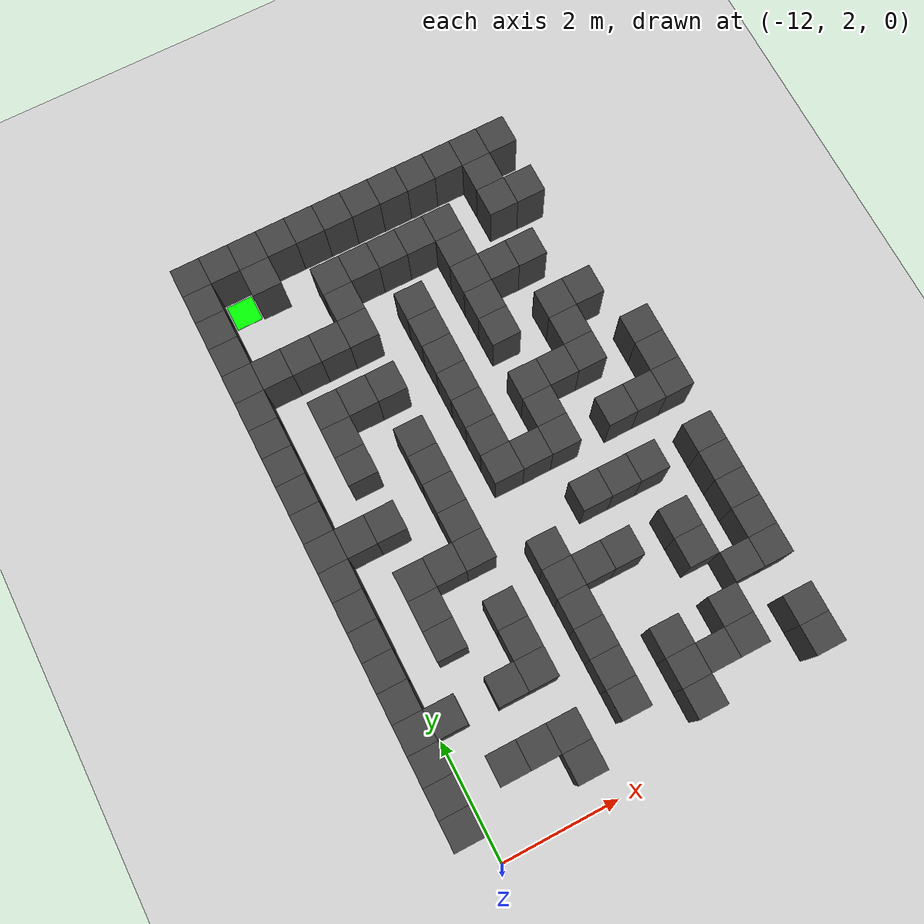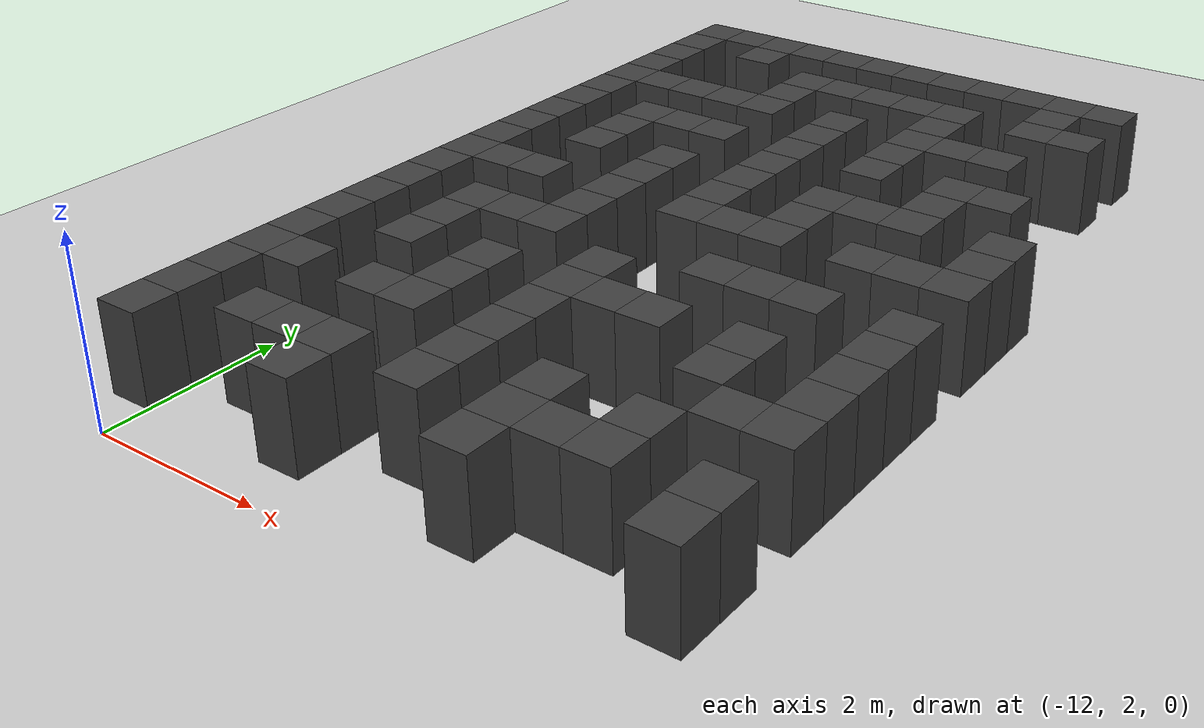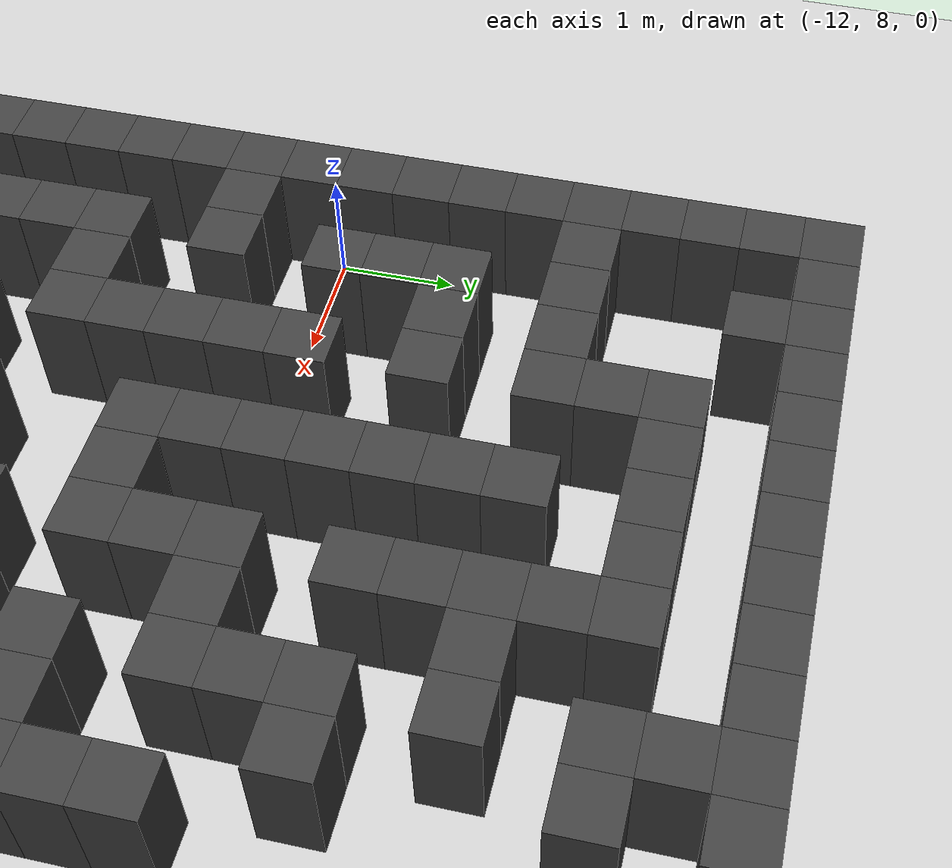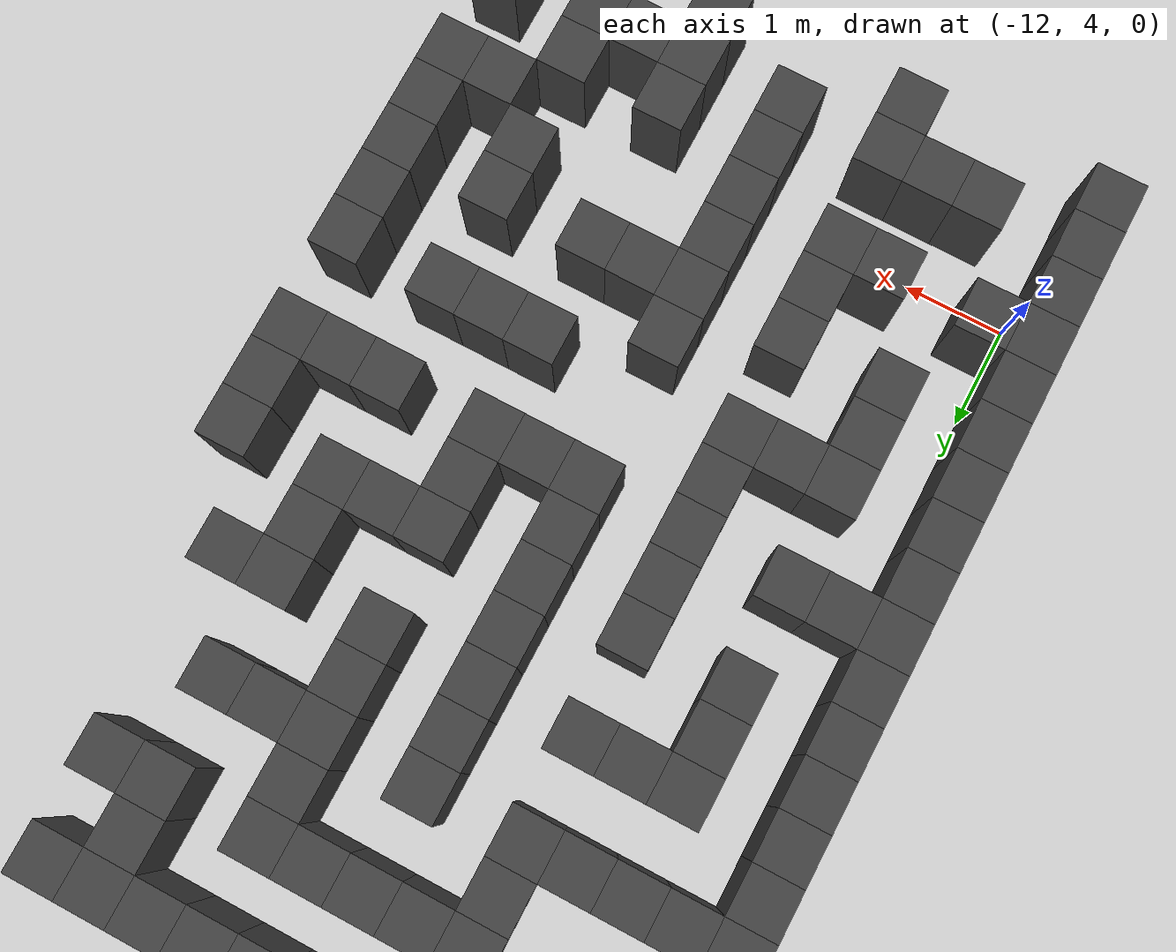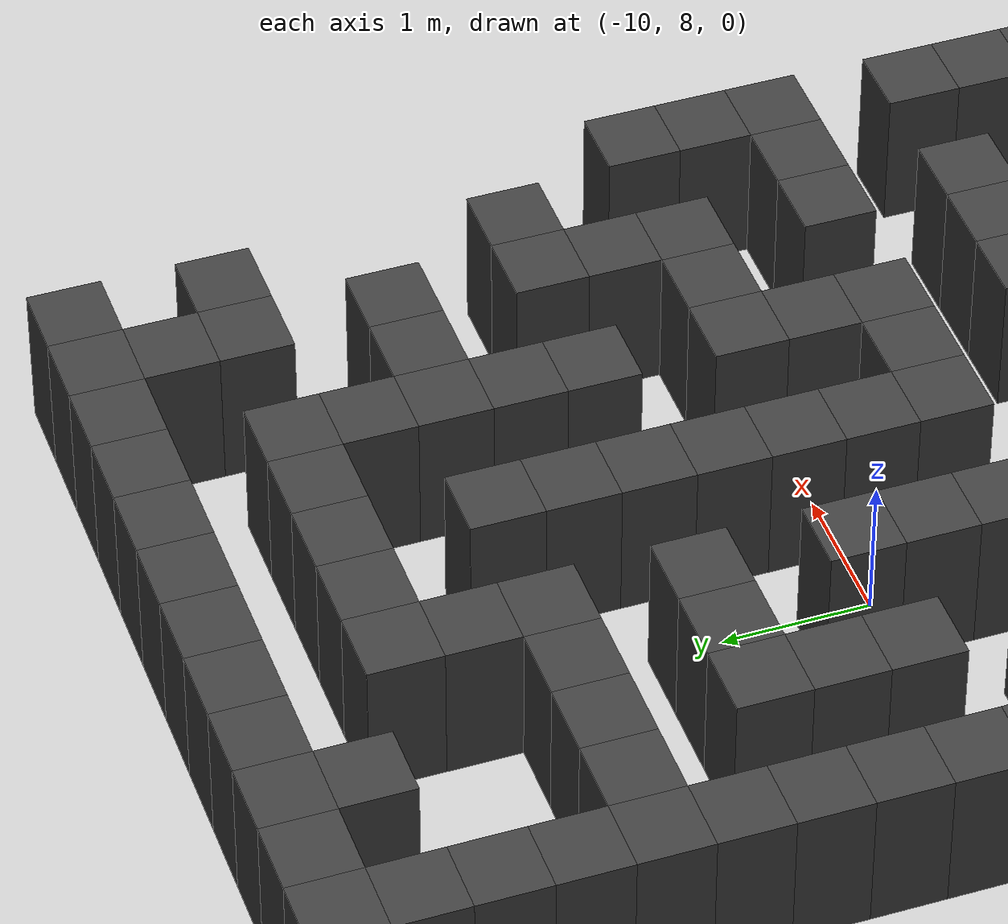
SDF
<sdf version="1.7">
 <world name="map_16668">
  <model name="ground_plane">
   <static>true</static>
   <link name="link">
    <collision name="collision">
     <geometry><plane><normal>0 0 1</normal><size>200 200</size></plane></geometry>
    </collision>
    <visual name="visual">
     <geometry><plane><normal>0 0 1</normal><size>200 200</size></plane></geometry>
     <material><ambient>0.8 0.8 0.8 1</ambient><diffuse>0.8 0.8 0.8 1</diffuse></material>
    </visual>
   </link>
  </model>
  <model name="maze_environment">
   <static>true</static>
   <link name="wall_0">
    <pose>-12.250 12.250 0.500 0 0 0</pose>
    <collision name="col"><geometry><box><size>0.5 0.5 1.0</size></box></geometry></collision>
    <visual name="vis">
     <geometry><box><size>0.5 0.5 1.0</size></box></geometry>
     <material><ambient>0.15 0.15 0.15 1</ambient><diffuse>0.25 0.25 0.25 1</diffuse></material>
    </visual>
   </link>
   <link name="wall_1">
    <pose>-11.750 12.250 0.500 0 0 0</pose>
    <collision name="col"><geometry><box><size>0.5 0.5 1.0</size></box></geometry></collision>
    <visual name="vis">
     <geometry><box><size>0.5 0.5 1.0</size></box></geometry>
     <material><ambient>0.15 0.15 0.15 1</ambient><diffuse>0.25 0.25 0.25 1</diffuse></material>
    </visual>
   </link>
   <link name="wall_2">
    <pose>-11.250 12.250 0.500 0 0 0</pose>
    <collision name="col"><geometry><box><size>0.5 0.5 1.0</size></box></geometry></collision>
    <visual name="vis">
     <geometry><box><size>0.5 0.5 1.0</size></box></geometry>
     <material><ambient>0.15 0.15 0.15 1</ambient><diffuse>0.25 0.25 0.25 1</diffuse></material>
    </visual>
   </link>
   <link name="wall_3">
    <pose>-10.750 12.250 0.500 0 0 0</pose>
    <collision name="col"><geometry><box><size>0.5 0.5 1.0</size></box></geometry></collision>
    <visual name="vis">
     <geometry><box><size>0.5 0.5 1.0</size></box></geometry>
     <material><ambient>0.15 0.15 0.15 1</ambient><diffuse>0.25 0.25 0.25 1</diffuse></material>
    </visual>
   </link>
   <link name="wall_4">
    <pose>-10.250 12.250 0.500 0 0 0</pose>
    <collision name="col"><geometry><box><size>0.5 0.5 1.0</size></box></geometry></collision>
    <visual name="vis">
     <geometry><box><size>0.5 0.5 1.0</size></box></geometry>
     <material><ambient>0.15 0.15 0.15 1</ambient><diffuse>0.25 0.25 0.25 1</diffuse></material>
    </visual>
   </link>
   <link name="wall_5">
    <pose>-9.750 12.250 0.500 0 0 0</pose>
    <collision name="col"><geometry><box><size>0.5 0.5 1.0</size></box></geometry></collision>
    <visual name="vis">
     <geometry><box><size>0.5 0.5 1.0</size></box></geometry>
     <material><ambient>0.15 0.15 0.15 1</ambient><diffuse>0.25 0.25 0.25 1</diffuse></material>
    </visual>
   </link>
   <link name="wall_6">
    <pose>-9.250 12.250 0.500 0 0 0</pose>
    <collision name="col"><geometry><box><size>0.5 0.5 1.0</size></box></geometry></collision>
    <visual name="vis">
     <geometry><box><size>0.5 0.5 1.0</size></box></geometry>
     <material><ambient>0.15 0.15 0.15 1</ambient><diffuse>0.25 0.25 0.25 1</diffuse></material>
    </visual>
   </link>
   <link name="wall_7">
    <pose>-8.750 12.250 0.500 0 0 0</pose>
    <collision name="col"><geometry><box><size>0.5 0.5 1.0</size></box></geometry></collision>
    <visual name="vis">
     <geometry><box><size>0.5 0.5 1.0</size></box></geometry>
     <material><ambient>0.15 0.15 0.15 1</ambient><diffuse>0.25 0.25 0.25 1</diffuse></material>
    </visual>
   </link>
   <link name="wall_8">
    <pose>-8.250 12.250 0.500 0 0 0</pose>
    <collision name="col"><geometry><box><size>0.5 0.5 1.0</size></box></geometry></collision>
    <visual name="vis">
     <geometry><box><size>0.5 0.5 1.0</size></box></geometry>
     <material><ambient>0.15 0.15 0.15 1</ambient><diffuse>0.25 0.25 0.25 1</diffuse></material>
    </visual>
   </link>
   <link name="wall_9">
    <pose>-7.750 12.250 0.500 0 0 0</pose>
    <collision name="col"><geometry><box><size>0.5 0.5 1.0</size></box></geometry></collision>
    <visual name="vis">
     <geometry><box><size>0.5 0.5 1.0</size></box></geometry>
     <material><ambient>0.15 0.15 0.15 1</ambient><diffuse>0.25 0.25 0.25 1</diffuse></material>
    </visual>
   </link>
   <link name="wall_10">
    <pose>-7.250 12.250 0.500 0 0 0</pose>
    <collision name="col"><geometry><box><size>0.5 0.5 1.0</size></box></geometry></collision>
    <visual name="vis">
     <geometry><box><size>0.5 0.5 1.0</size></box></geometry>
     <material><ambient>0.15 0.15 0.15 1</ambient><diffuse>0.25 0.25 0.25 1</diffuse></material>
    </visual>
   </link>
   <link name="wall_11">
    <pose>-6.750 12.250 0.500 0 0 0</pose>
    <collision name="col"><geometry><box><size>0.5 0.5 1.0</size></box></geometry></collision>
    <visual name="vis">
     <geometry><box><size>0.5 0.5 1.0</size></box></geometry>
     <material><ambient>0.15 0.15 0.15 1</ambient><diffuse>0.25 0.25 0.25 1</diffuse></material>
    </visual>
   </link>
   <link name="wall_50">
    <pose>-12.250 11.750 0.500 0 0 0</pose>
    <collision name="col"><geometry><box><size>0.5 0.5 1.0</size></box></geometry></collision>
    <visual name="vis">
     <geometry><box><size>0.5 0.5 1.0</size></box></geometry>
     <material><ambient>0.15 0.15 0.15 1</ambient><diffuse>0.25 0.25 0.25 1</diffuse></material>
    </visual>
   </link>
   <link name="wall_51">
    <pose>-11.250 11.750 0.500 0 0 0</pose>
    <collision name="col"><geometry><box><size>0.5 0.5 1.0</size></box></geometry></collision>
    <visual name="vis">
     <geometry><box><size>0.5 0.5 1.0</size></box></geometry>
     <material><ambient>0.15 0.15 0.15 1</ambient><diffuse>0.25 0.25 0.25 1</diffuse></material>
    </visual>
   </link>
   <link name="wall_52">
    <pose>-7.250 11.750 0.500 0 0 0</pose>
    <collision name="col"><geometry><box><size>0.5 0.5 1.0</size></box></geometry></collision>
    <visual name="vis">
     <geometry><box><size>0.5 0.5 1.0</size></box></geometry>
     <material><ambient>0.15 0.15 0.15 1</ambient><diffuse>0.25 0.25 0.25 1</diffuse></material>
    </visual>
   </link>
   <link name="wall_57">
    <pose>-12.250 11.250 0.500 0 0 0</pose>
    <collision name="col"><geometry><box><size>0.5 0.5 1.0</size></box></geometry></collision>
    <visual name="vis">
     <geometry><box><size>0.5 0.5 1.0</size></box></geometry>
     <material><ambient>0.15 0.15 0.15 1</ambient><diffuse>0.25 0.25 0.25 1</diffuse></material>
    </visual>
   </link>
   <link name="wall_58">
    <pose>-10.250 11.250 0.500 0 0 0</pose>
    <collision name="col"><geometry><box><size>0.5 0.5 1.0</size></box></geometry></collision>
    <visual name="vis">
     <geometry><box><size>0.5 0.5 1.0</size></box></geometry>
     <material><ambient>0.15 0.15 0.15 1</ambient><diffuse>0.25 0.25 0.25 1</diffuse></material>
    </visual>
   </link>
   <link name="wall_59">
    <pose>-9.750 11.250 0.500 0 0 0</pose>
    <collision name="col"><geometry><box><size>0.5 0.5 1.0</size></box></geometry></collision>
    <visual name="vis">
     <geometry><box><size>0.5 0.5 1.0</size></box></geometry>
     <material><ambient>0.15 0.15 0.15 1</ambient><diffuse>0.25 0.25 0.25 1</diffuse></material>
    </visual>
   </link>
   <link name="wall_60">
    <pose>-9.250 11.250 0.500 0 0 0</pose>
    <collision name="col"><geometry><box><size>0.5 0.5 1.0</size></box></geometry></collision>
    <visual name="vis">
     <geometry><box><size>0.5 0.5 1.0</size></box></geometry>
     <material><ambient>0.15 0.15 0.15 1</ambient><diffuse>0.25 0.25 0.25 1</diffuse></material>
    </visual>
   </link>
   <link name="wall_61">
    <pose>-8.750 11.250 0.500 0 0 0</pose>
    <collision name="col"><geometry><box><size>0.5 0.5 1.0</size></box></geometry></collision>
    <visual name="vis">
     <geometry><box><size>0.5 0.5 1.0</size></box></geometry>
     <material><ambient>0.15 0.15 0.15 1</ambient><diffuse>0.25 0.25 0.25 1</diffuse></material>
    </visual>
   </link>
   <link name="wall_62">
    <pose>-8.250 11.250 0.500 0 0 0</pose>
    <collision name="col"><geometry><box><size>0.5 0.5 1.0</size></box></geometry></collision>
    <visual name="vis">
     <geometry><box><size>0.5 0.5 1.0</size></box></geometry>
     <material><ambient>0.15 0.15 0.15 1</ambient><diffuse>0.25 0.25 0.25 1</diffuse></material>
    </visual>
   </link>
   <link name="wall_63">
    <pose>-7.250 11.250 0.500 0 0 0</pose>
    <collision name="col"><geometry><box><size>0.5 0.5 1.0</size></box></geometry></collision>
    <visual name="vis">
     <geometry><box><size>0.5 0.5 1.0</size></box></geometry>
     <material><ambient>0.15 0.15 0.15 1</ambient><diffuse>0.25 0.25 0.25 1</diffuse></material>
    </visual>
   </link>
   <link name="wall_64">
    <pose>-6.750 11.250 0.500 0 0 0</pose>
    <collision name="col"><geometry><box><size>0.5 0.5 1.0</size></box></geometry></collision>
    <visual name="vis">
     <geometry><box><size>0.5 0.5 1.0</size></box></geometry>
     <material><ambient>0.15 0.15 0.15 1</ambient><diffuse>0.25 0.25 0.25 1</diffuse></material>
    </visual>
   </link>
   <link name="wall_94">
    <pose>-12.250 10.750 0.500 0 0 0</pose>
    <collision name="col"><geometry><box><size>0.5 0.5 1.0</size></box></geometry></collision>
    <visual name="vis">
     <geometry><box><size>0.5 0.5 1.0</size></box></geometry>
     <material><ambient>0.15 0.15 0.15 1</ambient><diffuse>0.25 0.25 0.25 1</diffuse></material>
    </visual>
   </link>
   <link name="wall_95">
    <pose>-10.250 10.750 0.500 0 0 0</pose>
    <collision name="col"><geometry><box><size>0.5 0.5 1.0</size></box></geometry></collision>
    <visual name="vis">
     <geometry><box><size>0.5 0.5 1.0</size></box></geometry>
     <material><ambient>0.15 0.15 0.15 1</ambient><diffuse>0.25 0.25 0.25 1</diffuse></material>
    </visual>
   </link>
   <link name="wall_96">
    <pose>-8.250 10.750 0.500 0 0 0</pose>
    <collision name="col"><geometry><box><size>0.5 0.5 1.0</size></box></geometry></collision>
    <visual name="vis">
     <geometry><box><size>0.5 0.5 1.0</size></box></geometry>
     <material><ambient>0.15 0.15 0.15 1</ambient><diffuse>0.25 0.25 0.25 1</diffuse></material>
    </visual>
   </link>
   <link name="wall_109">
    <pose>-12.250 10.250 0.500 0 0 0</pose>
    <collision name="col"><geometry><box><size>0.5 0.5 1.0</size></box></geometry></collision>
    <visual name="vis">
     <geometry><box><size>0.5 0.5 1.0</size></box></geometry>
     <material><ambient>0.15 0.15 0.15 1</ambient><diffuse>0.25 0.25 0.25 1</diffuse></material>
    </visual>
   </link>
   <link name="wall_110">
    <pose>-11.750 10.250 0.500 0 0 0</pose>
    <collision name="col"><geometry><box><size>0.5 0.5 1.0</size></box></geometry></collision>
    <visual name="vis">
     <geometry><box><size>0.5 0.5 1.0</size></box></geometry>
     <material><ambient>0.15 0.15 0.15 1</ambient><diffuse>0.25 0.25 0.25 1</diffuse></material>
    </visual>
   </link>
   <link name="wall_111">
    <pose>-11.250 10.250 0.500 0 0 0</pose>
    <collision name="col"><geometry><box><size>0.5 0.5 1.0</size></box></geometry></collision>
    <visual name="vis">
     <geometry><box><size>0.5 0.5 1.0</size></box></geometry>
     <material><ambient>0.15 0.15 0.15 1</ambient><diffuse>0.25 0.25 0.25 1</diffuse></material>
    </visual>
   </link>
   <link name="wall_112">
    <pose>-10.750 10.250 0.500 0 0 0</pose>
    <collision name="col"><geometry><box><size>0.5 0.5 1.0</size></box></geometry></collision>
    <visual name="vis">
     <geometry><box><size>0.5 0.5 1.0</size></box></geometry>
     <material><ambient>0.15 0.15 0.15 1</ambient><diffuse>0.25 0.25 0.25 1</diffuse></material>
    </visual>
   </link>
   <link name="wall_113">
    <pose>-10.250 10.250 0.500 0 0 0</pose>
    <collision name="col"><geometry><box><size>0.5 0.5 1.0</size></box></geometry></collision>
    <visual name="vis">
     <geometry><box><size>0.5 0.5 1.0</size></box></geometry>
     <material><ambient>0.15 0.15 0.15 1</ambient><diffuse>0.25 0.25 0.25 1</diffuse></material>
    </visual>
   </link>
   <link name="wall_114">
    <pose>-9.250 10.250 0.500 0 0 0</pose>
    <collision name="col"><geometry><box><size>0.5 0.5 1.0</size></box></geometry></collision>
    <visual name="vis">
     <geometry><box><size>0.5 0.5 1.0</size></box></geometry>
     <material><ambient>0.15 0.15 0.15 1</ambient><diffuse>0.25 0.25 0.25 1</diffuse></material>
    </visual>
   </link>
   <link name="wall_115">
    <pose>-8.250 10.250 0.500 0 0 0</pose>
    <collision name="col"><geometry><box><size>0.5 0.5 1.0</size></box></geometry></collision>
    <visual name="vis">
     <geometry><box><size>0.5 0.5 1.0</size></box></geometry>
     <material><ambient>0.15 0.15 0.15 1</ambient><diffuse>0.25 0.25 0.25 1</diffuse></material>
    </visual>
   </link>
   <link name="wall_116">
    <pose>-7.750 10.250 0.500 0 0 0</pose>
    <collision name="col"><geometry><box><size>0.5 0.5 1.0</size></box></geometry></collision>
    <visual name="vis">
     <geometry><box><size>0.5 0.5 1.0</size></box></geometry>
     <material><ambient>0.15 0.15 0.15 1</ambient><diffuse>0.25 0.25 0.25 1</diffuse></material>
    </visual>
   </link>
   <link name="wall_117">
    <pose>-7.250 10.250 0.500 0 0 0</pose>
    <collision name="col"><geometry><box><size>0.5 0.5 1.0</size></box></geometry></collision>
    <visual name="vis">
     <geometry><box><size>0.5 0.5 1.0</size></box></geometry>
     <material><ambient>0.15 0.15 0.15 1</ambient><diffuse>0.25 0.25 0.25 1</diffuse></material>
    </visual>
   </link>
   <link name="wall_142">
    <pose>-12.250 9.750 0.500 0 0 0</pose>
    <collision name="col"><geometry><box><size>0.5 0.5 1.0</size></box></geometry></collision>
    <visual name="vis">
     <geometry><box><size>0.5 0.5 1.0</size></box></geometry>
     <material><ambient>0.15 0.15 0.15 1</ambient><diffuse>0.25 0.25 0.25 1</diffuse></material>
    </visual>
   </link>
   <link name="wall_143">
    <pose>-9.250 9.750 0.500 0 0 0</pose>
    <collision name="col"><geometry><box><size>0.5 0.5 1.0</size></box></geometry></collision>
    <visual name="vis">
     <geometry><box><size>0.5 0.5 1.0</size></box></geometry>
     <material><ambient>0.15 0.15 0.15 1</ambient><diffuse>0.25 0.25 0.25 1</diffuse></material>
    </visual>
   </link>
   <link name="wall_144">
    <pose>-8.250 9.750 0.500 0 0 0</pose>
    <collision name="col"><geometry><box><size>0.5 0.5 1.0</size></box></geometry></collision>
    <visual name="vis">
     <geometry><box><size>0.5 0.5 1.0</size></box></geometry>
     <material><ambient>0.15 0.15 0.15 1</ambient><diffuse>0.25 0.25 0.25 1</diffuse></material>
    </visual>
   </link>
   <link name="wall_154">
    <pose>-12.250 9.250 0.500 0 0 0</pose>
    <collision name="col"><geometry><box><size>0.5 0.5 1.0</size></box></geometry></collision>
    <visual name="vis">
     <geometry><box><size>0.5 0.5 1.0</size></box></geometry>
     <material><ambient>0.15 0.15 0.15 1</ambient><diffuse>0.25 0.25 0.25 1</diffuse></material>
    </visual>
   </link>
   <link name="wall_155">
    <pose>-11.250 9.250 0.500 0 0 0</pose>
    <collision name="col"><geometry><box><size>0.5 0.5 1.0</size></box></geometry></collision>
    <visual name="vis">
     <geometry><box><size>0.5 0.5 1.0</size></box></geometry>
     <material><ambient>0.15 0.15 0.15 1</ambient><diffuse>0.25 0.25 0.25 1</diffuse></material>
    </visual>
   </link>
   <link name="wall_156">
    <pose>-10.750 9.250 0.500 0 0 0</pose>
    <collision name="col"><geometry><box><size>0.5 0.5 1.0</size></box></geometry></collision>
    <visual name="vis">
     <geometry><box><size>0.5 0.5 1.0</size></box></geometry>
     <material><ambient>0.15 0.15 0.15 1</ambient><diffuse>0.25 0.25 0.25 1</diffuse></material>
    </visual>
   </link>
   <link name="wall_157">
    <pose>-10.250 9.250 0.500 0 0 0</pose>
    <collision name="col"><geometry><box><size>0.5 0.5 1.0</size></box></geometry></collision>
    <visual name="vis">
     <geometry><box><size>0.5 0.5 1.0</size></box></geometry>
     <material><ambient>0.15 0.15 0.15 1</ambient><diffuse>0.25 0.25 0.25 1</diffuse></material>
    </visual>
   </link>
   <link name="wall_158">
    <pose>-9.250 9.250 0.500 0 0 0</pose>
    <collision name="col"><geometry><box><size>0.5 0.5 1.0</size></box></geometry></collision>
    <visual name="vis">
     <geometry><box><size>0.5 0.5 1.0</size></box></geometry>
     <material><ambient>0.15 0.15 0.15 1</ambient><diffuse>0.25 0.25 0.25 1</diffuse></material>
    </visual>
   </link>
   <link name="wall_159">
    <pose>-8.250 9.250 0.500 0 0 0</pose>
    <collision name="col"><geometry><box><size>0.5 0.5 1.0</size></box></geometry></collision>
    <visual name="vis">
     <geometry><box><size>0.5 0.5 1.0</size></box></geometry>
     <material><ambient>0.15 0.15 0.15 1</ambient><diffuse>0.25 0.25 0.25 1</diffuse></material>
    </visual>
   </link>
   <link name="wall_160">
    <pose>-7.250 9.250 0.500 0 0 0</pose>
    <collision name="col"><geometry><box><size>0.5 0.5 1.0</size></box></geometry></collision>
    <visual name="vis">
     <geometry><box><size>0.5 0.5 1.0</size></box></geometry>
     <material><ambient>0.15 0.15 0.15 1</ambient><diffuse>0.25 0.25 0.25 1</diffuse></material>
    </visual>
   </link>
   <link name="wall_161">
    <pose>-6.750 9.250 0.500 0 0 0</pose>
    <collision name="col"><geometry><box><size>0.5 0.5 1.0</size></box></geometry></collision>
    <visual name="vis">
     <geometry><box><size>0.5 0.5 1.0</size></box></geometry>
     <material><ambient>0.15 0.15 0.15 1</ambient><diffuse>0.25 0.25 0.25 1</diffuse></material>
    </visual>
   </link>
   <link name="wall_189">
    <pose>-12.250 8.750 0.500 0 0 0</pose>
    <collision name="col"><geometry><box><size>0.5 0.5 1.0</size></box></geometry></collision>
    <visual name="vis">
     <geometry><box><size>0.5 0.5 1.0</size></box></geometry>
     <material><ambient>0.15 0.15 0.15 1</ambient><diffuse>0.25 0.25 0.25 1</diffuse></material>
    </visual>
   </link>
   <link name="wall_190">
    <pose>-11.250 8.750 0.500 0 0 0</pose>
    <collision name="col"><geometry><box><size>0.5 0.5 1.0</size></box></geometry></collision>
    <visual name="vis">
     <geometry><box><size>0.5 0.5 1.0</size></box></geometry>
     <material><ambient>0.15 0.15 0.15 1</ambient><diffuse>0.25 0.25 0.25 1</diffuse></material>
    </visual>
   </link>
   <link name="wall_191">
    <pose>-9.250 8.750 0.500 0 0 0</pose>
    <collision name="col"><geometry><box><size>0.5 0.5 1.0</size></box></geometry></collision>
    <visual name="vis">
     <geometry><box><size>0.5 0.5 1.0</size></box></geometry>
     <material><ambient>0.15 0.15 0.15 1</ambient><diffuse>0.25 0.25 0.25 1</diffuse></material>
    </visual>
   </link>
   <link name="wall_192">
    <pose>-7.250 8.750 0.500 0 0 0</pose>
    <collision name="col"><geometry><box><size>0.5 0.5 1.0</size></box></geometry></collision>
    <visual name="vis">
     <geometry><box><size>0.5 0.5 1.0</size></box></geometry>
     <material><ambient>0.15 0.15 0.15 1</ambient><diffuse>0.25 0.25 0.25 1</diffuse></material>
    </visual>
   </link>
   <link name="wall_203">
    <pose>-12.250 8.250 0.500 0 0 0</pose>
    <collision name="col"><geometry><box><size>0.5 0.5 1.0</size></box></geometry></collision>
    <visual name="vis">
     <geometry><box><size>0.5 0.5 1.0</size></box></geometry>
     <material><ambient>0.15 0.15 0.15 1</ambient><diffuse>0.25 0.25 0.25 1</diffuse></material>
    </visual>
   </link>
   <link name="wall_204">
    <pose>-11.250 8.250 0.500 0 0 0</pose>
    <collision name="col"><geometry><box><size>0.5 0.5 1.0</size></box></geometry></collision>
    <visual name="vis">
     <geometry><box><size>0.5 0.5 1.0</size></box></geometry>
     <material><ambient>0.15 0.15 0.15 1</ambient><diffuse>0.25 0.25 0.25 1</diffuse></material>
    </visual>
   </link>
   <link name="wall_205">
    <pose>-10.250 8.250 0.500 0 0 0</pose>
    <collision name="col"><geometry><box><size>0.5 0.5 1.0</size></box></geometry></collision>
    <visual name="vis">
     <geometry><box><size>0.5 0.5 1.0</size></box></geometry>
     <material><ambient>0.15 0.15 0.15 1</ambient><diffuse>0.25 0.25 0.25 1</diffuse></material>
    </visual>
   </link>
   <link name="wall_206">
    <pose>-9.250 8.250 0.500 0 0 0</pose>
    <collision name="col"><geometry><box><size>0.5 0.5 1.0</size></box></geometry></collision>
    <visual name="vis">
     <geometry><box><size>0.5 0.5 1.0</size></box></geometry>
     <material><ambient>0.15 0.15 0.15 1</ambient><diffuse>0.25 0.25 0.25 1</diffuse></material>
    </visual>
   </link>
   <link name="wall_207">
    <pose>-8.250 8.250 0.500 0 0 0</pose>
    <collision name="col"><geometry><box><size>0.5 0.5 1.0</size></box></geometry></collision>
    <visual name="vis">
     <geometry><box><size>0.5 0.5 1.0</size></box></geometry>
     <material><ambient>0.15 0.15 0.15 1</ambient><diffuse>0.25 0.25 0.25 1</diffuse></material>
    </visual>
   </link>
   <link name="wall_208">
    <pose>-7.750 8.250 0.500 0 0 0</pose>
    <collision name="col"><geometry><box><size>0.5 0.5 1.0</size></box></geometry></collision>
    <visual name="vis">
     <geometry><box><size>0.5 0.5 1.0</size></box></geometry>
     <material><ambient>0.15 0.15 0.15 1</ambient><diffuse>0.25 0.25 0.25 1</diffuse></material>
    </visual>
   </link>
   <link name="wall_209">
    <pose>-7.250 8.250 0.500 0 0 0</pose>
    <collision name="col"><geometry><box><size>0.5 0.5 1.0</size></box></geometry></collision>
    <visual name="vis">
     <geometry><box><size>0.5 0.5 1.0</size></box></geometry>
     <material><ambient>0.15 0.15 0.15 1</ambient><diffuse>0.25 0.25 0.25 1</diffuse></material>
    </visual>
   </link>
   <link name="wall_210">
    <pose>-6.250 8.250 0.500 0 0 0</pose>
    <collision name="col"><geometry><box><size>0.5 0.5 1.0</size></box></geometry></collision>
    <visual name="vis">
     <geometry><box><size>0.5 0.5 1.0</size></box></geometry>
     <material><ambient>0.15 0.15 0.15 1</ambient><diffuse>0.25 0.25 0.25 1</diffuse></material>
    </visual>
   </link>
   <link name="wall_234">
    <pose>-12.250 7.750 0.500 0 0 0</pose>
    <collision name="col"><geometry><box><size>0.5 0.5 1.0</size></box></geometry></collision>
    <visual name="vis">
     <geometry><box><size>0.5 0.5 1.0</size></box></geometry>
     <material><ambient>0.15 0.15 0.15 1</ambient><diffuse>0.25 0.25 0.25 1</diffuse></material>
    </visual>
   </link>
   <link name="wall_235">
    <pose>-10.250 7.750 0.500 0 0 0</pose>
    <collision name="col"><geometry><box><size>0.5 0.5 1.0</size></box></geometry></collision>
    <visual name="vis">
     <geometry><box><size>0.5 0.5 1.0</size></box></geometry>
     <material><ambient>0.15 0.15 0.15 1</ambient><diffuse>0.25 0.25 0.25 1</diffuse></material>
    </visual>
   </link>
   <link name="wall_236">
    <pose>-9.250 7.750 0.500 0 0 0</pose>
    <collision name="col"><geometry><box><size>0.5 0.5 1.0</size></box></geometry></collision>
    <visual name="vis">
     <geometry><box><size>0.5 0.5 1.0</size></box></geometry>
     <material><ambient>0.15 0.15 0.15 1</ambient><diffuse>0.25 0.25 0.25 1</diffuse></material>
    </visual>
   </link>
   <link name="wall_237">
    <pose>-8.250 7.750 0.500 0 0 0</pose>
    <collision name="col"><geometry><box><size>0.5 0.5 1.0</size></box></geometry></collision>
    <visual name="vis">
     <geometry><box><size>0.5 0.5 1.0</size></box></geometry>
     <material><ambient>0.15 0.15 0.15 1</ambient><diffuse>0.25 0.25 0.25 1</diffuse></material>
    </visual>
   </link>
   <link name="wall_238">
    <pose>-6.250 7.750 0.500 0 0 0</pose>
    <collision name="col"><geometry><box><size>0.5 0.5 1.0</size></box></geometry></collision>
    <visual name="vis">
     <geometry><box><size>0.5 0.5 1.0</size></box></geometry>
     <material><ambient>0.15 0.15 0.15 1</ambient><diffuse>0.25 0.25 0.25 1</diffuse></material>
    </visual>
   </link>
   <link name="wall_250">
    <pose>-12.250 7.250 0.500 0 0 0</pose>
    <collision name="col"><geometry><box><size>0.5 0.5 1.0</size></box></geometry></collision>
    <visual name="vis">
     <geometry><box><size>0.5 0.5 1.0</size></box></geometry>
     <material><ambient>0.15 0.15 0.15 1</ambient><diffuse>0.25 0.25 0.25 1</diffuse></material>
    </visual>
   </link>
   <link name="wall_251">
    <pose>-11.750 7.250 0.500 0 0 0</pose>
    <collision name="col"><geometry><box><size>0.5 0.5 1.0</size></box></geometry></collision>
    <visual name="vis">
     <geometry><box><size>0.5 0.5 1.0</size></box></geometry>
     <material><ambient>0.15 0.15 0.15 1</ambient><diffuse>0.25 0.25 0.25 1</diffuse></material>
    </visual>
   </link>
   <link name="wall_252">
    <pose>-11.250 7.250 0.500 0 0 0</pose>
    <collision name="col"><geometry><box><size>0.5 0.5 1.0</size></box></geometry></collision>
    <visual name="vis">
     <geometry><box><size>0.5 0.5 1.0</size></box></geometry>
     <material><ambient>0.15 0.15 0.15 1</ambient><diffuse>0.25 0.25 0.25 1</diffuse></material>
    </visual>
   </link>
   <link name="wall_253">
    <pose>-10.250 7.250 0.500 0 0 0</pose>
    <collision name="col"><geometry><box><size>0.5 0.5 1.0</size></box></geometry></collision>
    <visual name="vis">
     <geometry><box><size>0.5 0.5 1.0</size></box></geometry>
     <material><ambient>0.15 0.15 0.15 1</ambient><diffuse>0.25 0.25 0.25 1</diffuse></material>
    </visual>
   </link>
   <link name="wall_254">
    <pose>-9.250 7.250 0.500 0 0 0</pose>
    <collision name="col"><geometry><box><size>0.5 0.5 1.0</size></box></geometry></collision>
    <visual name="vis">
     <geometry><box><size>0.5 0.5 1.0</size></box></geometry>
     <material><ambient>0.15 0.15 0.15 1</ambient><diffuse>0.25 0.25 0.25 1</diffuse></material>
    </visual>
   </link>
   <link name="wall_255">
    <pose>-8.750 7.250 0.500 0 0 0</pose>
    <collision name="col"><geometry><box><size>0.5 0.5 1.0</size></box></geometry></collision>
    <visual name="vis">
     <geometry><box><size>0.5 0.5 1.0</size></box></geometry>
     <material><ambient>0.15 0.15 0.15 1</ambient><diffuse>0.25 0.25 0.25 1</diffuse></material>
    </visual>
   </link>
   <link name="wall_256">
    <pose>-8.250 7.250 0.500 0 0 0</pose>
    <collision name="col"><geometry><box><size>0.5 0.5 1.0</size></box></geometry></collision>
    <visual name="vis">
     <geometry><box><size>0.5 0.5 1.0</size></box></geometry>
     <material><ambient>0.15 0.15 0.15 1</ambient><diffuse>0.25 0.25 0.25 1</diffuse></material>
    </visual>
   </link>
   <link name="wall_257">
    <pose>-7.250 7.250 0.500 0 0 0</pose>
    <collision name="col"><geometry><box><size>0.5 0.5 1.0</size></box></geometry></collision>
    <visual name="vis">
     <geometry><box><size>0.5 0.5 1.0</size></box></geometry>
     <material><ambient>0.15 0.15 0.15 1</ambient><diffuse>0.25 0.25 0.25 1</diffuse></material>
    </visual>
   </link>
   <link name="wall_258">
    <pose>-6.750 7.250 0.500 0 0 0</pose>
    <collision name="col"><geometry><box><size>0.5 0.5 1.0</size></box></geometry></collision>
    <visual name="vis">
     <geometry><box><size>0.5 0.5 1.0</size></box></geometry>
     <material><ambient>0.15 0.15 0.15 1</ambient><diffuse>0.25 0.25 0.25 1</diffuse></material>
    </visual>
   </link>
   <link name="wall_259">
    <pose>-6.250 7.250 0.500 0 0 0</pose>
    <collision name="col"><geometry><box><size>0.5 0.5 1.0</size></box></geometry></collision>
    <visual name="vis">
     <geometry><box><size>0.5 0.5 1.0</size></box></geometry>
     <material><ambient>0.15 0.15 0.15 1</ambient><diffuse>0.25 0.25 0.25 1</diffuse></material>
    </visual>
   </link>
   <link name="wall_283">
    <pose>-12.250 6.750 0.500 0 0 0</pose>
    <collision name="col"><geometry><box><size>0.5 0.5 1.0</size></box></geometry></collision>
    <visual name="vis">
     <geometry><box><size>0.5 0.5 1.0</size></box></geometry>
     <material><ambient>0.15 0.15 0.15 1</ambient><diffuse>0.25 0.25 0.25 1</diffuse></material>
    </visual>
   </link>
   <link name="wall_284">
    <pose>-10.250 6.750 0.500 0 0 0</pose>
    <collision name="col"><geometry><box><size>0.5 0.5 1.0</size></box></geometry></collision>
    <visual name="vis">
     <geometry><box><size>0.5 0.5 1.0</size></box></geometry>
     <material><ambient>0.15 0.15 0.15 1</ambient><diffuse>0.25 0.25 0.25 1</diffuse></material>
    </visual>
   </link>
   <link name="wall_297">
    <pose>-12.250 6.250 0.500 0 0 0</pose>
    <collision name="col"><geometry><box><size>0.5 0.5 1.0</size></box></geometry></collision>
    <visual name="vis">
     <geometry><box><size>0.5 0.5 1.0</size></box></geometry>
     <material><ambient>0.15 0.15 0.15 1</ambient><diffuse>0.25 0.25 0.25 1</diffuse></material>
    </visual>
   </link>
   <link name="wall_298">
    <pose>-11.250 6.250 0.500 0 0 0</pose>
    <collision name="col"><geometry><box><size>0.5 0.5 1.0</size></box></geometry></collision>
    <visual name="vis">
     <geometry><box><size>0.5 0.5 1.0</size></box></geometry>
     <material><ambient>0.15 0.15 0.15 1</ambient><diffuse>0.25 0.25 0.25 1</diffuse></material>
    </visual>
   </link>
   <link name="wall_299">
    <pose>-10.750 6.250 0.500 0 0 0</pose>
    <collision name="col"><geometry><box><size>0.5 0.5 1.0</size></box></geometry></collision>
    <visual name="vis">
     <geometry><box><size>0.5 0.5 1.0</size></box></geometry>
     <material><ambient>0.15 0.15 0.15 1</ambient><diffuse>0.25 0.25 0.25 1</diffuse></material>
    </visual>
   </link>
   <link name="wall_300">
    <pose>-10.250 6.250 0.500 0 0 0</pose>
    <collision name="col"><geometry><box><size>0.5 0.5 1.0</size></box></geometry></collision>
    <visual name="vis">
     <geometry><box><size>0.5 0.5 1.0</size></box></geometry>
     <material><ambient>0.15 0.15 0.15 1</ambient><diffuse>0.25 0.25 0.25 1</diffuse></material>
    </visual>
   </link>
   <link name="wall_301">
    <pose>-8.250 6.250 0.500 0 0 0</pose>
    <collision name="col"><geometry><box><size>0.5 0.5 1.0</size></box></geometry></collision>
    <visual name="vis">
     <geometry><box><size>0.5 0.5 1.0</size></box></geometry>
     <material><ambient>0.15 0.15 0.15 1</ambient><diffuse>0.25 0.25 0.25 1</diffuse></material>
    </visual>
   </link>
   <link name="wall_302">
    <pose>-7.750 6.250 0.500 0 0 0</pose>
    <collision name="col"><geometry><box><size>0.5 0.5 1.0</size></box></geometry></collision>
    <visual name="vis">
     <geometry><box><size>0.5 0.5 1.0</size></box></geometry>
     <material><ambient>0.15 0.15 0.15 1</ambient><diffuse>0.25 0.25 0.25 1</diffuse></material>
    </visual>
   </link>
   <link name="wall_303">
    <pose>-7.250 6.250 0.500 0 0 0</pose>
    <collision name="col"><geometry><box><size>0.5 0.5 1.0</size></box></geometry></collision>
    <visual name="vis">
     <geometry><box><size>0.5 0.5 1.0</size></box></geometry>
     <material><ambient>0.15 0.15 0.15 1</ambient><diffuse>0.25 0.25 0.25 1</diffuse></material>
    </visual>
   </link>
   <link name="wall_304">
    <pose>-6.250 6.250 0.500 0 0 0</pose>
    <collision name="col"><geometry><box><size>0.5 0.5 1.0</size></box></geometry></collision>
    <visual name="vis">
     <geometry><box><size>0.5 0.5 1.0</size></box></geometry>
     <material><ambient>0.15 0.15 0.15 1</ambient><diffuse>0.25 0.25 0.25 1</diffuse></material>
    </visual>
   </link>
   <link name="wall_329">
    <pose>-12.250 5.750 0.500 0 0 0</pose>
    <collision name="col"><geometry><box><size>0.5 0.5 1.0</size></box></geometry></collision>
    <visual name="vis">
     <geometry><box><size>0.5 0.5 1.0</size></box></geometry>
     <material><ambient>0.15 0.15 0.15 1</ambient><diffuse>0.25 0.25 0.25 1</diffuse></material>
    </visual>
   </link>
   <link name="wall_330">
    <pose>-11.250 5.750 0.500 0 0 0</pose>
    <collision name="col"><geometry><box><size>0.5 0.5 1.0</size></box></geometry></collision>
    <visual name="vis">
     <geometry><box><size>0.5 0.5 1.0</size></box></geometry>
     <material><ambient>0.15 0.15 0.15 1</ambient><diffuse>0.25 0.25 0.25 1</diffuse></material>
    </visual>
   </link>
   <link name="wall_331">
    <pose>-9.250 5.750 0.500 0 0 0</pose>
    <collision name="col"><geometry><box><size>0.5 0.5 1.0</size></box></geometry></collision>
    <visual name="vis">
     <geometry><box><size>0.5 0.5 1.0</size></box></geometry>
     <material><ambient>0.15 0.15 0.15 1</ambient><diffuse>0.25 0.25 0.25 1</diffuse></material>
    </visual>
   </link>
   <link name="wall_332">
    <pose>-6.250 5.750 0.500 0 0 0</pose>
    <collision name="col"><geometry><box><size>0.5 0.5 1.0</size></box></geometry></collision>
    <visual name="vis">
     <geometry><box><size>0.5 0.5 1.0</size></box></geometry>
     <material><ambient>0.15 0.15 0.15 1</ambient><diffuse>0.25 0.25 0.25 1</diffuse></material>
    </visual>
   </link>
   <link name="wall_344">
    <pose>-12.250 5.250 0.500 0 0 0</pose>
    <collision name="col"><geometry><box><size>0.5 0.5 1.0</size></box></geometry></collision>
    <visual name="vis">
     <geometry><box><size>0.5 0.5 1.0</size></box></geometry>
     <material><ambient>0.15 0.15 0.15 1</ambient><diffuse>0.25 0.25 0.25 1</diffuse></material>
    </visual>
   </link>
   <link name="wall_345">
    <pose>-11.250 5.250 0.500 0 0 0</pose>
    <collision name="col"><geometry><box><size>0.5 0.5 1.0</size></box></geometry></collision>
    <visual name="vis">
     <geometry><box><size>0.5 0.5 1.0</size></box></geometry>
     <material><ambient>0.15 0.15 0.15 1</ambient><diffuse>0.25 0.25 0.25 1</diffuse></material>
    </visual>
   </link>
   <link name="wall_346">
    <pose>-10.250 5.250 0.500 0 0 0</pose>
    <collision name="col"><geometry><box><size>0.5 0.5 1.0</size></box></geometry></collision>
    <visual name="vis">
     <geometry><box><size>0.5 0.5 1.0</size></box></geometry>
     <material><ambient>0.15 0.15 0.15 1</ambient><diffuse>0.25 0.25 0.25 1</diffuse></material>
    </visual>
   </link>
   <link name="wall_347">
    <pose>-9.250 5.250 0.500 0 0 0</pose>
    <collision name="col"><geometry><box><size>0.5 0.5 1.0</size></box></geometry></collision>
    <visual name="vis">
     <geometry><box><size>0.5 0.5 1.0</size></box></geometry>
     <material><ambient>0.15 0.15 0.15 1</ambient><diffuse>0.25 0.25 0.25 1</diffuse></material>
    </visual>
   </link>
   <link name="wall_348">
    <pose>-8.750 5.250 0.500 0 0 0</pose>
    <collision name="col"><geometry><box><size>0.5 0.5 1.0</size></box></geometry></collision>
    <visual name="vis">
     <geometry><box><size>0.5 0.5 1.0</size></box></geometry>
     <material><ambient>0.15 0.15 0.15 1</ambient><diffuse>0.25 0.25 0.25 1</diffuse></material>
    </visual>
   </link>
   <link name="wall_349">
    <pose>-8.250 5.250 0.500 0 0 0</pose>
    <collision name="col"><geometry><box><size>0.5 0.5 1.0</size></box></geometry></collision>
    <visual name="vis">
     <geometry><box><size>0.5 0.5 1.0</size></box></geometry>
     <material><ambient>0.15 0.15 0.15 1</ambient><diffuse>0.25 0.25 0.25 1</diffuse></material>
    </visual>
   </link>
   <link name="wall_350">
    <pose>-7.250 5.250 0.500 0 0 0</pose>
    <collision name="col"><geometry><box><size>0.5 0.5 1.0</size></box></geometry></collision>
    <visual name="vis">
     <geometry><box><size>0.5 0.5 1.0</size></box></geometry>
     <material><ambient>0.15 0.15 0.15 1</ambient><diffuse>0.25 0.25 0.25 1</diffuse></material>
    </visual>
   </link>
   <link name="wall_351">
    <pose>-6.250 5.250 0.500 0 0 0</pose>
    <collision name="col"><geometry><box><size>0.5 0.5 1.0</size></box></geometry></collision>
    <visual name="vis">
     <geometry><box><size>0.5 0.5 1.0</size></box></geometry>
     <material><ambient>0.15 0.15 0.15 1</ambient><diffuse>0.25 0.25 0.25 1</diffuse></material>
    </visual>
   </link>
   <link name="wall_375">
    <pose>-12.250 4.750 0.500 0 0 0</pose>
    <collision name="col"><geometry><box><size>0.5 0.5 1.0</size></box></geometry></collision>
    <visual name="vis">
     <geometry><box><size>0.5 0.5 1.0</size></box></geometry>
     <material><ambient>0.15 0.15 0.15 1</ambient><diffuse>0.25 0.25 0.25 1</diffuse></material>
    </visual>
   </link>
   <link name="wall_376">
    <pose>-10.250 4.750 0.500 0 0 0</pose>
    <collision name="col"><geometry><box><size>0.5 0.5 1.0</size></box></geometry></collision>
    <visual name="vis">
     <geometry><box><size>0.5 0.5 1.0</size></box></geometry>
     <material><ambient>0.15 0.15 0.15 1</ambient><diffuse>0.25 0.25 0.25 1</diffuse></material>
    </visual>
   </link>
   <link name="wall_377">
    <pose>-9.250 4.750 0.500 0 0 0</pose>
    <collision name="col"><geometry><box><size>0.5 0.5 1.0</size></box></geometry></collision>
    <visual name="vis">
     <geometry><box><size>0.5 0.5 1.0</size></box></geometry>
     <material><ambient>0.15 0.15 0.15 1</ambient><diffuse>0.25 0.25 0.25 1</diffuse></material>
    </visual>
   </link>
   <link name="wall_378">
    <pose>-7.250 4.750 0.500 0 0 0</pose>
    <collision name="col"><geometry><box><size>0.5 0.5 1.0</size></box></geometry></collision>
    <visual name="vis">
     <geometry><box><size>0.5 0.5 1.0</size></box></geometry>
     <material><ambient>0.15 0.15 0.15 1</ambient><diffuse>0.25 0.25 0.25 1</diffuse></material>
    </visual>
   </link>
   <link name="wall_379">
    <pose>-6.250 4.750 0.500 0 0 0</pose>
    <collision name="col"><geometry><box><size>0.5 0.5 1.0</size></box></geometry></collision>
    <visual name="vis">
     <geometry><box><size>0.5 0.5 1.0</size></box></geometry>
     <material><ambient>0.15 0.15 0.15 1</ambient><diffuse>0.25 0.25 0.25 1</diffuse></material>
    </visual>
   </link>
   <link name="wall_389">
    <pose>-12.250 4.250 0.500 0 0 0</pose>
    <collision name="col"><geometry><box><size>0.5 0.5 1.0</size></box></geometry></collision>
    <visual name="vis">
     <geometry><box><size>0.5 0.5 1.0</size></box></geometry>
     <material><ambient>0.15 0.15 0.15 1</ambient><diffuse>0.25 0.25 0.25 1</diffuse></material>
    </visual>
   </link>
   <link name="wall_390">
    <pose>-11.750 4.250 0.500 0 0 0</pose>
    <collision name="col"><geometry><box><size>0.5 0.5 1.0</size></box></geometry></collision>
    <visual name="vis">
     <geometry><box><size>0.5 0.5 1.0</size></box></geometry>
     <material><ambient>0.15 0.15 0.15 1</ambient><diffuse>0.25 0.25 0.25 1</diffuse></material>
    </visual>
   </link>
   <link name="wall_391">
    <pose>-10.750 4.250 0.500 0 0 0</pose>
    <collision name="col"><geometry><box><size>0.5 0.5 1.0</size></box></geometry></collision>
    <visual name="vis">
     <geometry><box><size>0.5 0.5 1.0</size></box></geometry>
     <material><ambient>0.15 0.15 0.15 1</ambient><diffuse>0.25 0.25 0.25 1</diffuse></material>
    </visual>
   </link>
   <link name="wall_392">
    <pose>-10.250 4.250 0.500 0 0 0</pose>
    <collision name="col"><geometry><box><size>0.5 0.5 1.0</size></box></geometry></collision>
    <visual name="vis">
     <geometry><box><size>0.5 0.5 1.0</size></box></geometry>
     <material><ambient>0.15 0.15 0.15 1</ambient><diffuse>0.25 0.25 0.25 1</diffuse></material>
    </visual>
   </link>
   <link name="wall_393">
    <pose>-9.250 4.250 0.500 0 0 0</pose>
    <collision name="col"><geometry><box><size>0.5 0.5 1.0</size></box></geometry></collision>
    <visual name="vis">
     <geometry><box><size>0.5 0.5 1.0</size></box></geometry>
     <material><ambient>0.15 0.15 0.15 1</ambient><diffuse>0.25 0.25 0.25 1</diffuse></material>
    </visual>
   </link>
   <link name="wall_394">
    <pose>-6.750 4.250 0.500 0 0 0</pose>
    <collision name="col"><geometry><box><size>0.5 0.5 1.0</size></box></geometry></collision>
    <visual name="vis">
     <geometry><box><size>0.5 0.5 1.0</size></box></geometry>
     <material><ambient>0.15 0.15 0.15 1</ambient><diffuse>0.25 0.25 0.25 1</diffuse></material>
    </visual>
   </link>
   <link name="wall_395">
    <pose>-6.250 4.250 0.500 0 0 0</pose>
    <collision name="col"><geometry><box><size>0.5 0.5 1.0</size></box></geometry></collision>
    <visual name="vis">
     <geometry><box><size>0.5 0.5 1.0</size></box></geometry>
     <material><ambient>0.15 0.15 0.15 1</ambient><diffuse>0.25 0.25 0.25 1</diffuse></material>
    </visual>
   </link>
   <link name="wall_421">
    <pose>-12.250 3.750 0.500 0 0 0</pose>
    <collision name="col"><geometry><box><size>0.5 0.5 1.0</size></box></geometry></collision>
    <visual name="vis">
     <geometry><box><size>0.5 0.5 1.0</size></box></geometry>
     <material><ambient>0.15 0.15 0.15 1</ambient><diffuse>0.25 0.25 0.25 1</diffuse></material>
    </visual>
   </link>
   <link name="wall_422">
    <pose>-9.250 3.750 0.500 0 0 0</pose>
    <collision name="col"><geometry><box><size>0.5 0.5 1.0</size></box></geometry></collision>
    <visual name="vis">
     <geometry><box><size>0.5 0.5 1.0</size></box></geometry>
     <material><ambient>0.15 0.15 0.15 1</ambient><diffuse>0.25 0.25 0.25 1</diffuse></material>
    </visual>
   </link>
   <link name="wall_423">
    <pose>-8.250 3.750 0.500 0 0 0</pose>
    <collision name="col"><geometry><box><size>0.5 0.5 1.0</size></box></geometry></collision>
    <visual name="vis">
     <geometry><box><size>0.5 0.5 1.0</size></box></geometry>
     <material><ambient>0.15 0.15 0.15 1</ambient><diffuse>0.25 0.25 0.25 1</diffuse></material>
    </visual>
   </link>
   <link name="wall_424">
    <pose>-7.250 3.750 0.500 0 0 0</pose>
    <collision name="col"><geometry><box><size>0.5 0.5 1.0</size></box></geometry></collision>
    <visual name="vis">
     <geometry><box><size>0.5 0.5 1.0</size></box></geometry>
     <material><ambient>0.15 0.15 0.15 1</ambient><diffuse>0.25 0.25 0.25 1</diffuse></material>
    </visual>
   </link>
   <link name="wall_434">
    <pose>-12.250 3.250 0.500 0 0 0</pose>
    <collision name="col"><geometry><box><size>0.5 0.5 1.0</size></box></geometry></collision>
    <visual name="vis">
     <geometry><box><size>0.5 0.5 1.0</size></box></geometry>
     <material><ambient>0.15 0.15 0.15 1</ambient><diffuse>0.25 0.25 0.25 1</diffuse></material>
    </visual>
   </link>
   <link name="wall_435">
    <pose>-11.250 3.250 0.500 0 0 0</pose>
    <collision name="col"><geometry><box><size>0.5 0.5 1.0</size></box></geometry></collision>
    <visual name="vis">
     <geometry><box><size>0.5 0.5 1.0</size></box></geometry>
     <material><ambient>0.15 0.15 0.15 1</ambient><diffuse>0.25 0.25 0.25 1</diffuse></material>
    </visual>
   </link>
   <link name="wall_436">
    <pose>-10.750 3.250 0.500 0 0 0</pose>
    <collision name="col"><geometry><box><size>0.5 0.5 1.0</size></box></geometry></collision>
    <visual name="vis">
     <geometry><box><size>0.5 0.5 1.0</size></box></geometry>
     <material><ambient>0.15 0.15 0.15 1</ambient><diffuse>0.25 0.25 0.25 1</diffuse></material>
    </visual>
   </link>
   <link name="wall_437">
    <pose>-10.250 3.250 0.500 0 0 0</pose>
    <collision name="col"><geometry><box><size>0.5 0.5 1.0</size></box></geometry></collision>
    <visual name="vis">
     <geometry><box><size>0.5 0.5 1.0</size></box></geometry>
     <material><ambient>0.15 0.15 0.15 1</ambient><diffuse>0.25 0.25 0.25 1</diffuse></material>
    </visual>
   </link>
   <link name="wall_438">
    <pose>-9.250 3.250 0.500 0 0 0</pose>
    <collision name="col"><geometry><box><size>0.5 0.5 1.0</size></box></geometry></collision>
    <visual name="vis">
     <geometry><box><size>0.5 0.5 1.0</size></box></geometry>
     <material><ambient>0.15 0.15 0.15 1</ambient><diffuse>0.25 0.25 0.25 1</diffuse></material>
    </visual>
   </link>
   <link name="wall_439">
    <pose>-8.250 3.250 0.500 0 0 0</pose>
    <collision name="col"><geometry><box><size>0.5 0.5 1.0</size></box></geometry></collision>
    <visual name="vis">
     <geometry><box><size>0.5 0.5 1.0</size></box></geometry>
     <material><ambient>0.15 0.15 0.15 1</ambient><diffuse>0.25 0.25 0.25 1</diffuse></material>
    </visual>
   </link>
   <link name="wall_440">
    <pose>-7.750 3.250 0.500 0 0 0</pose>
    <collision name="col"><geometry><box><size>0.5 0.5 1.0</size></box></geometry></collision>
    <visual name="vis">
     <geometry><box><size>0.5 0.5 1.0</size></box></geometry>
     <material><ambient>0.15 0.15 0.15 1</ambient><diffuse>0.25 0.25 0.25 1</diffuse></material>
    </visual>
   </link>
   <link name="wall_441">
    <pose>-7.250 3.250 0.500 0 0 0</pose>
    <collision name="col"><geometry><box><size>0.5 0.5 1.0</size></box></geometry></collision>
    <visual name="vis">
     <geometry><box><size>0.5 0.5 1.0</size></box></geometry>
     <material><ambient>0.15 0.15 0.15 1</ambient><diffuse>0.25 0.25 0.25 1</diffuse></material>
    </visual>
   </link>
   <link name="wall_442">
    <pose>-6.250 3.250 0.500 0 0 0</pose>
    <collision name="col"><geometry><box><size>0.5 0.5 1.0</size></box></geometry></collision>
    <visual name="vis">
     <geometry><box><size>0.5 0.5 1.0</size></box></geometry>
     <material><ambient>0.15 0.15 0.15 1</ambient><diffuse>0.25 0.25 0.25 1</diffuse></material>
    </visual>
   </link>
   <link name="wall_466">
    <pose>-12.250 2.750 0.500 0 0 0</pose>
    <collision name="col"><geometry><box><size>0.5 0.5 1.0</size></box></geometry></collision>
    <visual name="vis">
     <geometry><box><size>0.5 0.5 1.0</size></box></geometry>
     <material><ambient>0.15 0.15 0.15 1</ambient><diffuse>0.25 0.25 0.25 1</diffuse></material>
    </visual>
   </link>
   <link name="wall_467">
    <pose>-10.250 2.750 0.500 0 0 0</pose>
    <collision name="col"><geometry><box><size>0.5 0.5 1.0</size></box></geometry></collision>
    <visual name="vis">
     <geometry><box><size>0.5 0.5 1.0</size></box></geometry>
     <material><ambient>0.15 0.15 0.15 1</ambient><diffuse>0.25 0.25 0.25 1</diffuse></material>
    </visual>
   </link>
   <link name="wall_468">
    <pose>-8.250 2.750 0.500 0 0 0</pose>
    <collision name="col"><geometry><box><size>0.5 0.5 1.0</size></box></geometry></collision>
    <visual name="vis">
     <geometry><box><size>0.5 0.5 1.0</size></box></geometry>
     <material><ambient>0.15 0.15 0.15 1</ambient><diffuse>0.25 0.25 0.25 1</diffuse></material>
    </visual>
   </link>
   <link name="wall_469">
    <pose>-6.250 2.750 0.500 0 0 0</pose>
    <collision name="col"><geometry><box><size>0.5 0.5 1.0</size></box></geometry></collision>
    <visual name="vis">
     <geometry><box><size>0.5 0.5 1.0</size></box></geometry>
     <material><ambient>0.15 0.15 0.15 1</ambient><diffuse>0.25 0.25 0.25 1</diffuse></material>
    </visual>
   </link>
   <link name="start_zone">
    <pose>-11.750 11.750 0.005 0 0 0</pose>
    <visual name="vis">
     <geometry><box><size>0.45 0.45 0.01</size></box></geometry>
     <material>
      <ambient>0.0 1.0 0.0 1</ambient>
      <diffuse>0.0 1.0 0.0 1</diffuse>
      <emissive>0.00 0.60 0.00 1</emissive>
     </material>
    </visual>
   </link>
  </model>
 </world>
</sdf>
